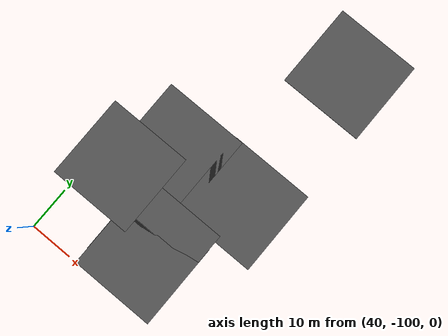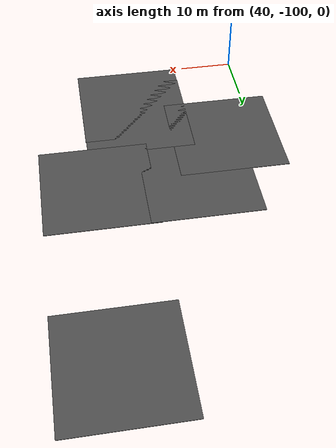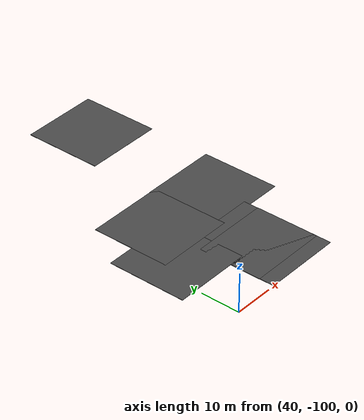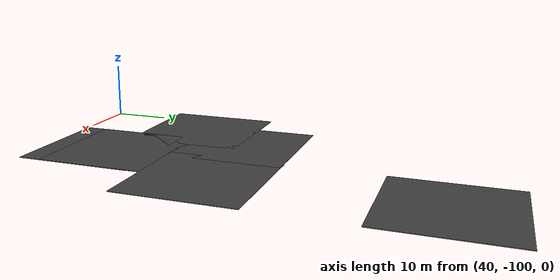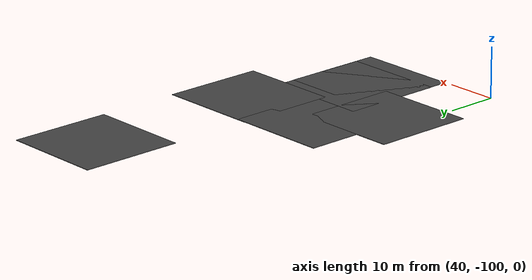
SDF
<sdf version="1.6">
 <world name="default">
  <model name="asphalt_plane">
   <static>1</static>
   <link name="link">
    <collision name="collision"><geometry><box><size>20 20 0.1</size></box></geometry></collision>
    <visual name="visual">
     <cast_shadows>0</cast_shadows>
     <geometry><box><size>20 20 0.1</size></box></geometry>
     <material>
      <script>
       <uri>model://asphalt_plane/materials/scripts</uri>
       <uri>model://asphalt_plane/materials/textures</uri>
       <name>vrc/asphalt</name>
      </script>
     </material>
    </visual>
   </link>
   <pose>70.7475 -31.5972 0 0 -0 0</pose>
  </model>
  <model name="asphalt_plane_17">
   <static>1</static>
   <link name="link">
    <collision name="collision"><geometry><box><size>20 20 0.1</size></box></geometry></collision>
    <visual name="visual">
     <cast_shadows>0</cast_shadows>
     <geometry><box><size>20 20 0.1</size></box></geometry>
     <material>
      <script>
       <uri>model://asphalt_plane/materials/scripts</uri>
       <uri>model://asphalt_plane/materials/textures</uri>
       <name>vrc/asphalt</name>
      </script>
     </material>
    </visual>
   </link>
   <pose>52.5696 -67.9238 0 0 -0 0</pose>
  </model>
  <model name="asphalt_plane_18">
   <static>1</static>
   <link name="link">
    <collision name="collision"><geometry><box><size>20 20 0.1</size></box></geometry></collision>
    <visual name="visual">
     <cast_shadows>0</cast_shadows>
     <geometry><box><size>20 20 0.1</size></box></geometry>
     <material>
      <script>
       <uri>model://asphalt_plane/materials/scripts</uri>
       <uri>model://asphalt_plane/materials/textures</uri>
       <name>vrc/asphalt</name>
      </script>
     </material>
    </visual>
   </link>
   <pose>70.6965 -67.8375 0 0 -0 0</pose>
  </model>
  <model name="asphalt_plane_19">
   <static>1</static>
   <link name="link">
    <collision name="collision"><geometry><box><size>20 20 0.1</size></box></geometry></collision>
    <visual name="visual">
     <cast_shadows>0</cast_shadows>
     <geometry><box><size>20 20 0.1</size></box></geometry>
     <material>
      <script>
       <uri>model://asphalt_plane/materials/scripts</uri>
       <uri>model://asphalt_plane/materials/textures</uri>
       <name>vrc/asphalt</name>
      </script>
     </material>
    </visual>
   </link>
   <pose>61.6742 -86.2327 0 0 -0 0</pose>
  </model>
  <model name="asphalt_plane_20">
   <static>1</static>
   <link name="link">
    <collision name="collision"><geometry><box><size>20 20 0.1</size></box></geometry></collision>
    <visual name="visual">
     <cast_shadows>0</cast_shadows>
     <geometry><box><size>20 20 0.1</size></box></geometry>
     <material>
      <script>
       <uri>model://asphalt_plane/materials/scripts</uri>
       <uri>model://asphalt_plane/materials/textures</uri>
       <name>vrc/asphalt</name>
      </script>
     </material>
    </visual>
   </link>
   <pose>61.7481 -89.9696 0 0 -0 0</pose>
  </model>
  <model name="asphalt_plane_25">
   <static>1</static>
   <link name="link">
    <collision name="collision"><geometry><box><size>20 20 0.1</size></box></geometry></collision>
    <visual name="visual">
     <cast_shadows>0</cast_shadows>
     <geometry><box><size>20 20 0.1</size></box></geometry>
     <material>
      <script>
       <uri>model://asphalt_plane/materials/scripts</uri>
       <uri>model://asphalt_plane/materials/textures</uri>
       <name>vrc/asphalt</name>
      </script>
     </material>
    </visual>
   </link>
   <pose>45.6367 -78.4315 0 0 -0 0</pose>
  </model>
 </world>
</sdf>
